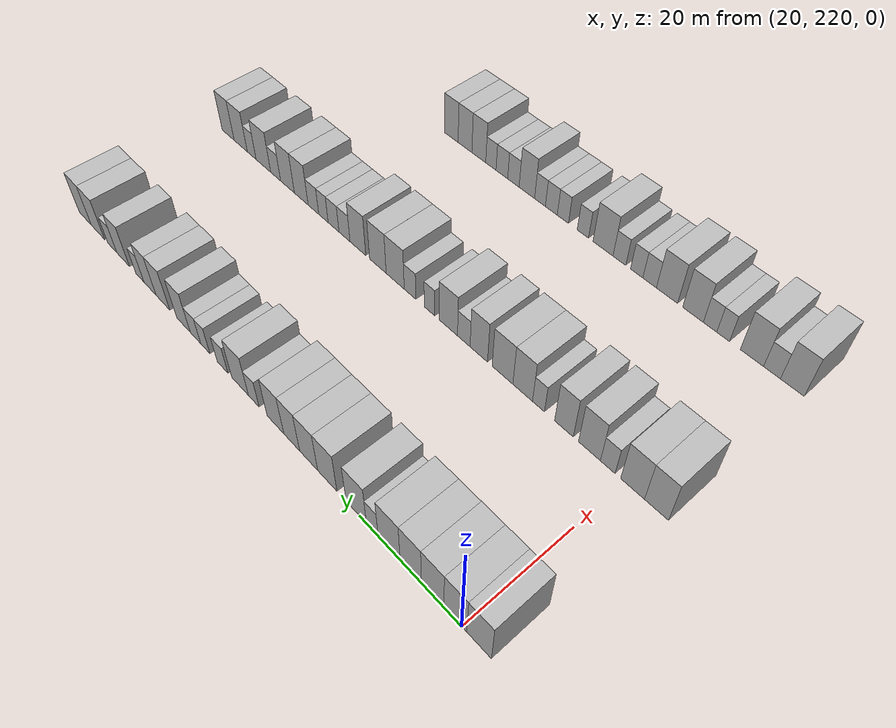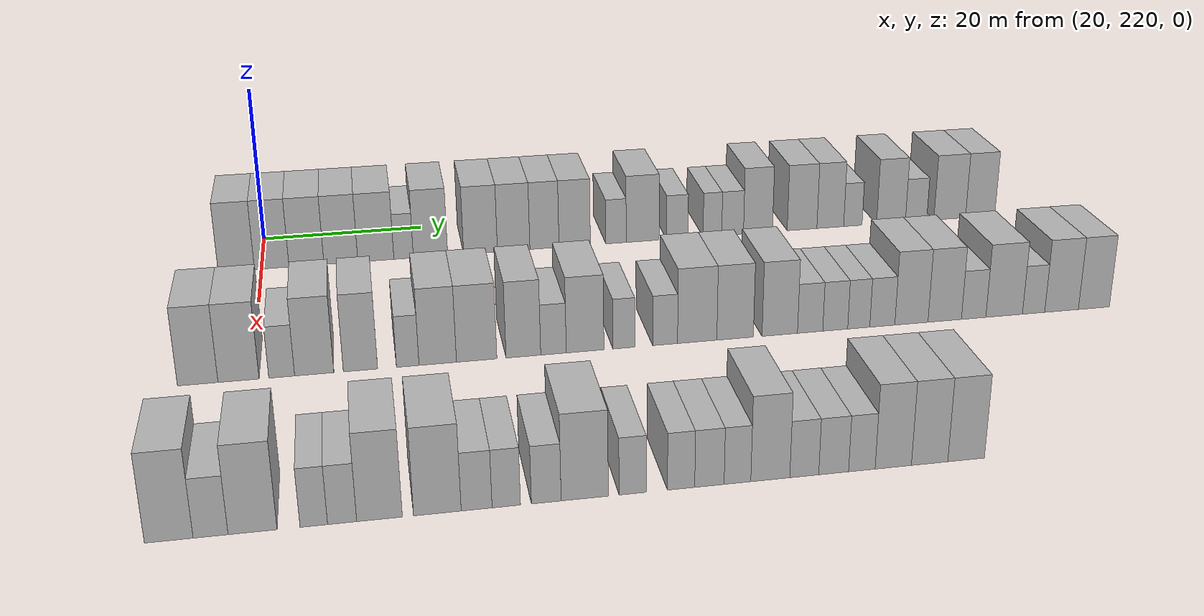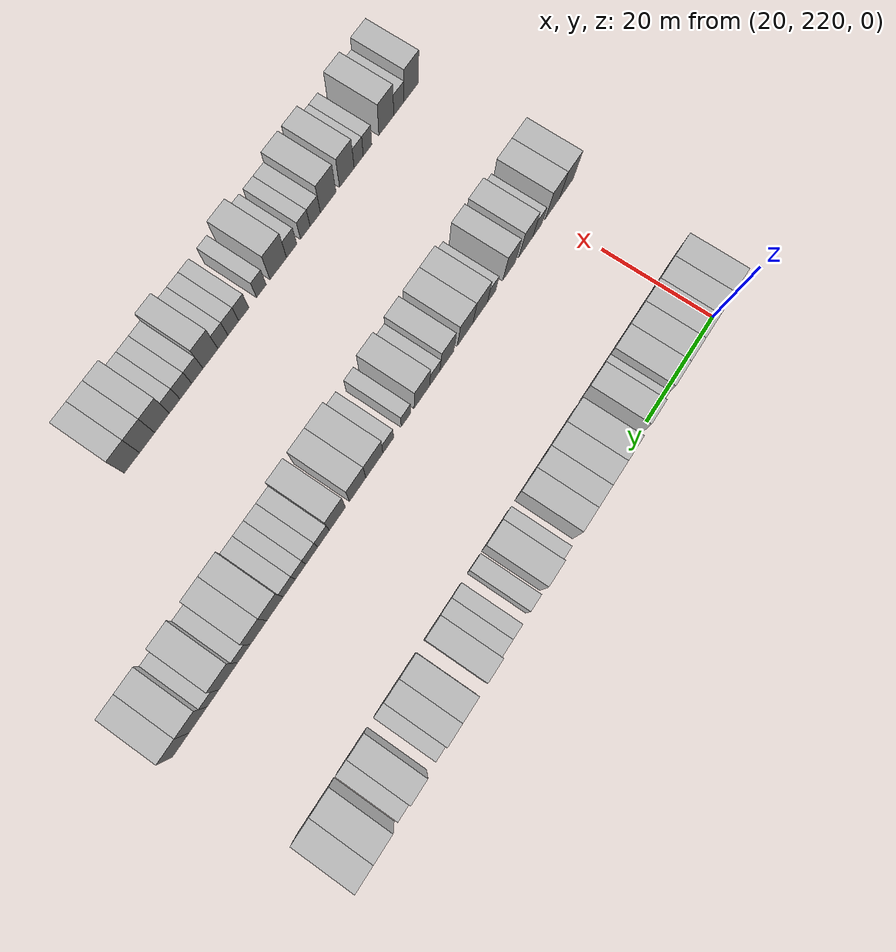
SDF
<sdf version="1.6">
 <world name="default">
  <model name="building_173">
   <static>1</static>
   <pose>25.0000 216.9651 0 0.000000 0.000000 0.000000</pose>
   <link name="link">
    <pose>0 0 4.50 0 0 0</pose>
    <collision name="collision"><geometry><box><size>10.0000 4.3359 9.0000</size></box></geometry></collision>
    <visual name="visual">
     <cast_shadows>0</cast_shadows>
     <geometry><box><size>10.0000 4.3359 9.0000</size></box></geometry>
     <material>
      <script>
       <uri>model://HANNAS_wall/materials/scripts</uri>
       <uri>model://HANNAS_wall/materials/textures</uri>
       <name>vrc/HANNAS_wall</name>
      </script>
     </material>
    </visual>
   </link>
  </model>
  <model name="building_174">
   <static>1</static>
   <pose>25.0000 221.2165 0 0.000000 0.000000 0.000000</pose>
   <link name="link">
    <pose>0 0 4.50 0 0 0</pose>
    <collision name="collision"><geometry><box><size>10.0000 4.1668 9.0000</size></box></geometry></collision>
    <visual name="visual">
     <cast_shadows>0</cast_shadows>
     <geometry><box><size>10.0000 4.1668 9.0000</size></box></geometry>
     <material>
      <script>
       <uri>model://HANNAS_wall/materials/scripts</uri>
       <uri>model://HANNAS_wall/materials/textures</uri>
       <name>vrc/HANNAS_wall</name>
      </script>
     </material>
    </visual>
   </link>
  </model>
  <model name="building_175">
   <static>1</static>
   <pose>25.0000 225.4187 0 0.000000 0.000000 0.000000</pose>
   <link name="link">
    <pose>0 0 4.50 0 0 0</pose>
    <collision name="collision"><geometry><box><size>10.0000 4.2378 9.0000</size></box></geometry></collision>
    <visual name="visual">
     <cast_shadows>0</cast_shadows>
     <geometry><box><size>10.0000 4.2378 9.0000</size></box></geometry>
     <material>
      <script>
       <uri>model://HANNAS_wall/materials/scripts</uri>
       <uri>model://HANNAS_wall/materials/textures</uri>
       <name>vrc/HANNAS_wall</name>
      </script>
     </material>
    </visual>
   </link>
  </model>
  <model name="building_176">
   <static>1</static>
   <pose>25.0000 229.6151 0 0.000000 0.000000 0.000000</pose>
   <link name="link">
    <pose>0 0 4.50 0 0 0</pose>
    <collision name="collision"><geometry><box><size>10.0000 4.1550 9.0000</size></box></geometry></collision>
    <visual name="visual">
     <cast_shadows>0</cast_shadows>
     <geometry><box><size>10.0000 4.1550 9.0000</size></box></geometry>
     <material>
      <script>
       <uri>model://HANNAS_wall/materials/scripts</uri>
       <uri>model://HANNAS_wall/materials/textures</uri>
       <name>vrc/HANNAS_wall</name>
      </script>
     </material>
    </visual>
   </link>
  </model>
  <model name="building_177">
   <static>1</static>
   <pose>25.0000 233.9117 0 0.000000 0.000000 0.000000</pose>
   <link name="link">
    <pose>0 0 4.50 0 0 0</pose>
    <collision name="collision"><geometry><box><size>10.0000 4.4381 9.0000</size></box></geometry></collision>
    <visual name="visual">
     <cast_shadows>0</cast_shadows>
     <geometry><box><size>10.0000 4.4381 9.0000</size></box></geometry>
     <material>
      <script>
       <uri>model://HANNAS_wall/materials/scripts</uri>
       <uri>model://HANNAS_wall/materials/textures</uri>
       <name>vrc/HANNAS_wall</name>
      </script>
     </material>
    </visual>
   </link>
  </model>
  <model name="building_178">
   <static>1</static>
   <pose>25.0000 237.3391 0 0.000000 0.000000 0.000000</pose>
   <link name="link">
    <pose>0 0 3.00 0 0 0</pose>
    <collision name="collision"><geometry><box><size>10.0000 2.4168 6.0000</size></box></geometry></collision>
    <visual name="visual">
     <cast_shadows>0</cast_shadows>
     <geometry><box><size>10.0000 2.4168 6.0000</size></box></geometry>
     <material>
      <script>
       <uri>model://HANNAS_wall/materials/scripts</uri>
       <uri>model://HANNAS_wall/materials/textures</uri>
       <name>vrc/HANNAS_wall</name>
      </script>
     </material>
    </visual>
   </link>
  </model>
  <model name="building_179">
   <static>1</static>
   <pose>25.0000 240.6886 0 0.000000 0.000000 0.000000</pose>
   <link name="link">
    <pose>0 0 4.50 0 0 0</pose>
    <collision name="collision"><geometry><box><size>10.0000 4.2821 9.0000</size></box></geometry></collision>
    <visual name="visual">
     <cast_shadows>0</cast_shadows>
     <geometry><box><size>10.0000 4.2821 9.0000</size></box></geometry>
     <material>
      <script>
       <uri>model://HANNAS_wall/materials/scripts</uri>
       <uri>model://HANNAS_wall/materials/textures</uri>
       <name>vrc/HANNAS_wall</name>
      </script>
     </material>
    </visual>
   </link>
  </model>
  <model name="building_180">
   <static>1</static>
   <pose>25.0000 246.9629 0 0.000000 0.000000 0.000000</pose>
   <link name="link">
    <pose>0 0 4.50 0 0 0</pose>
    <collision name="collision"><geometry><box><size>10.0000 4.2664 9.0000</size></box></geometry></collision>
    <visual name="visual">
     <cast_shadows>0</cast_shadows>
     <geometry><box><size>10.0000 4.2664 9.0000</size></box></geometry>
     <material>
      <script>
       <uri>model://HANNAS_wall/materials/scripts</uri>
       <uri>model://HANNAS_wall/materials/textures</uri>
       <name>vrc/HANNAS_wall</name>
      </script>
     </material>
    </visual>
   </link>
  </model>
  <model name="building_181">
   <static>1</static>
   <pose>25.0000 251.1588 0 0.000000 0.000000 0.000000</pose>
   <link name="link">
    <pose>0 0 4.50 0 0 0</pose>
    <collision name="collision"><geometry><box><size>10.0000 4.1256 9.0000</size></box></geometry></collision>
    <visual name="visual">
     <cast_shadows>0</cast_shadows>
     <geometry><box><size>10.0000 4.1256 9.0000</size></box></geometry>
     <material>
      <script>
       <uri>model://HANNAS_wall/materials/scripts</uri>
       <uri>model://HANNAS_wall/materials/textures</uri>
       <name>vrc/HANNAS_wall</name>
      </script>
     </material>
    </visual>
   </link>
  </model>
  <model name="building_182">
   <static>1</static>
   <pose>25.0000 255.0871 0 0.000000 0.000000 0.000000</pose>
   <link name="link">
    <pose>0 0 4.50 0 0 0</pose>
    <collision name="collision"><geometry><box><size>10.0000 3.7310 9.0000</size></box></geometry></collision>
    <visual name="visual">
     <cast_shadows>0</cast_shadows>
     <geometry><box><size>10.0000 3.7310 9.0000</size></box></geometry>
     <material>
      <script>
       <uri>model://HANNAS_wall/materials/scripts</uri>
       <uri>model://HANNAS_wall/materials/textures</uri>
       <name>vrc/HANNAS_wall</name>
      </script>
     </material>
    </visual>
   </link>
  </model>
  <model name="building_183">
   <static>1</static>
   <pose>25.0000 258.9717 0 0.000000 0.000000 0.000000</pose>
   <link name="link">
    <pose>0 0 4.50 0 0 0</pose>
    <collision name="collision"><geometry><box><size>10.0000 4.0381 9.0000</size></box></geometry></collision>
    <visual name="visual">
     <cast_shadows>0</cast_shadows>
     <geometry><box><size>10.0000 4.0381 9.0000</size></box></geometry>
     <material>
      <script>
       <uri>model://HANNAS_wall/materials/scripts</uri>
       <uri>model://HANNAS_wall/materials/textures</uri>
       <name>vrc/HANNAS_wall</name>
      </script>
     </material>
    </visual>
   </link>
  </model>
  <model name="building_184">
   <static>1</static>
   <pose>25.0000 264.3147 0 0.000000 0.000000 0.000000</pose>
   <link name="link">
    <pose>0 0 3.00 0 0 0</pose>
    <collision name="collision"><geometry><box><size>10.0000 2.6479 6.0000</size></box></geometry></collision>
    <visual name="visual">
     <cast_shadows>0</cast_shadows>
     <geometry><box><size>10.0000 2.6479 6.0000</size></box></geometry>
     <material>
      <script>
       <uri>model://HANNAS_wall/materials/scripts</uri>
       <uri>model://HANNAS_wall/materials/textures</uri>
       <name>vrc/HANNAS_wall</name>
      </script>
     </material>
    </visual>
   </link>
  </model>
  <model name="building_185">
   <static>1</static>
   <pose>25.0000 267.7854 0 0.000000 0.000000 0.000000</pose>
   <link name="link">
    <pose>0 0 4.50 0 0 0</pose>
    <collision name="collision"><geometry><box><size>10.0000 4.2936 9.0000</size></box></geometry></collision>
    <visual name="visual">
     <cast_shadows>0</cast_shadows>
     <geometry><box><size>10.0000 4.2936 9.0000</size></box></geometry>
     <material>
      <script>
       <uri>model://HANNAS_wall/materials/scripts</uri>
       <uri>model://HANNAS_wall/materials/textures</uri>
       <name>vrc/HANNAS_wall</name>
      </script>
     </material>
    </visual>
   </link>
  </model>
  <model name="building_186">
   <static>1</static>
   <pose>25.0000 272.3407 0 0.000000 0.000000 0.000000</pose>
   <link name="link">
    <pose>0 0 3.00 0 0 0</pose>
    <collision name="collision"><geometry><box><size>10.0000 2.8170 6.0000</size></box></geometry></collision>
    <visual name="visual">
     <cast_shadows>0</cast_shadows>
     <geometry><box><size>10.0000 2.8170 6.0000</size></box></geometry>
     <material>
      <script>
       <uri>model://HANNAS_wall/materials/scripts</uri>
       <uri>model://HANNAS_wall/materials/textures</uri>
       <name>vrc/HANNAS_wall</name>
      </script>
     </material>
    </visual>
   </link>
  </model>
  <model name="building_187">
   <static>1</static>
   <pose>25.0000 276.9847 0 0.000000 0.000000 0.000000</pose>
   <link name="link">
    <pose>0 0 3.00 0 0 0</pose>
    <collision name="collision"><geometry><box><size>10.0000 2.4710 6.0000</size></box></geometry></collision>
    <visual name="visual">
     <cast_shadows>0</cast_shadows>
     <geometry><box><size>10.0000 2.4710 6.0000</size></box></geometry>
     <material>
      <script>
       <uri>model://HANNAS_wall/materials/scripts</uri>
       <uri>model://HANNAS_wall/materials/textures</uri>
       <name>vrc/HANNAS_wall</name>
      </script>
     </material>
    </visual>
   </link>
  </model>
  <model name="building_188">
   <static>1</static>
   <pose>25.0000 279.6724 0 0.000000 0.000000 0.000000</pose>
   <link name="link">
    <pose>0 0 3.00 0 0 0</pose>
    <collision name="collision"><geometry><box><size>10.0000 2.9045 6.0000</size></box></geometry></collision>
    <visual name="visual">
     <cast_shadows>0</cast_shadows>
     <geometry><box><size>10.0000 2.9045 6.0000</size></box></geometry>
     <material>
      <script>
       <uri>model://HANNAS_wall/materials/scripts</uri>
       <uri>model://HANNAS_wall/materials/textures</uri>
       <name>vrc/HANNAS_wall</name>
      </script>
     </material>
    </visual>
   </link>
  </model>
  <model name="building_189">
   <static>1</static>
   <pose>25.0000 283.0646 0 0.000000 0.000000 0.000000</pose>
   <link name="link">
    <pose>0 0 4.50 0 0 0</pose>
    <collision name="collision"><geometry><box><size>10.0000 3.8799 9.0000</size></box></geometry></collision>
    <visual name="visual">
     <cast_shadows>0</cast_shadows>
     <geometry><box><size>10.0000 3.8799 9.0000</size></box></geometry>
     <material>
      <script>
       <uri>model://HANNAS_wall/materials/scripts</uri>
       <uri>model://HANNAS_wall/materials/textures</uri>
       <name>vrc/HANNAS_wall</name>
      </script>
     </material>
    </visual>
   </link>
  </model>
  <model name="building_190">
   <static>1</static>
   <pose>25.0000 289.0183 0 0.000000 0.000000 0.000000</pose>
   <link name="link">
    <pose>0 0 4.50 0 0 0</pose>
    <collision name="collision"><geometry><box><size>10.0000 4.0274 9.0000</size></box></geometry></collision>
    <visual name="visual">
     <cast_shadows>0</cast_shadows>
     <geometry><box><size>10.0000 4.0274 9.0000</size></box></geometry>
     <material>
      <script>
       <uri>model://HANNAS_wall/materials/scripts</uri>
       <uri>model://HANNAS_wall/materials/textures</uri>
       <name>vrc/HANNAS_wall</name>
      </script>
     </material>
    </visual>
   </link>
  </model>
  <model name="building_191">
   <static>1</static>
   <pose>25.0000 292.8583 0 0.000000 0.000000 0.000000</pose>
   <link name="link">
    <pose>0 0 4.50 0 0 0</pose>
    <collision name="collision"><geometry><box><size>10.0000 3.6526 9.0000</size></box></geometry></collision>
    <visual name="visual">
     <cast_shadows>0</cast_shadows>
     <geometry><box><size>10.0000 3.6526 9.0000</size></box></geometry>
     <material>
      <script>
       <uri>model://HANNAS_wall/materials/scripts</uri>
       <uri>model://HANNAS_wall/materials/textures</uri>
       <name>vrc/HANNAS_wall</name>
      </script>
     </material>
    </visual>
   </link>
  </model>
  <model name="building_192">
   <static>1</static>
   <pose>25.0000 295.9469 0 0.000000 0.000000 0.000000</pose>
   <link name="link">
    <pose>0 0 3.00 0 0 0</pose>
    <collision name="collision"><geometry><box><size>10.0000 2.5247 6.0000</size></box></geometry></collision>
    <visual name="visual">
     <cast_shadows>0</cast_shadows>
     <geometry><box><size>10.0000 2.5247 6.0000</size></box></geometry>
     <material>
      <script>
       <uri>model://HANNAS_wall/materials/scripts</uri>
       <uri>model://HANNAS_wall/materials/textures</uri>
       <name>vrc/HANNAS_wall</name>
      </script>
     </material>
    </visual>
   </link>
  </model>
  <model name="building_193">
   <static>1</static>
   <pose>25.0000 301.2041 0 0.000000 0.000000 0.000000</pose>
   <link name="link">
    <pose>0 0 4.50 0 0 0</pose>
    <collision name="collision"><geometry><box><size>10.0000 3.9897 9.0000</size></box></geometry></collision>
    <visual name="visual">
     <cast_shadows>0</cast_shadows>
     <geometry><box><size>10.0000 3.9897 9.0000</size></box></geometry>
     <material>
      <script>
       <uri>model://HANNAS_wall/materials/scripts</uri>
       <uri>model://HANNAS_wall/materials/textures</uri>
       <name>vrc/HANNAS_wall</name>
      </script>
     </material>
    </visual>
   </link>
  </model>
  <model name="building_194">
   <static>1</static>
   <pose>25.0000 304.6856 0 0.000000 0.000000 0.000000</pose>
   <link name="link">
    <pose>0 0 3.00 0 0 0</pose>
    <collision name="collision"><geometry><box><size>10.0000 2.9733 6.0000</size></box></geometry></collision>
    <visual name="visual">
     <cast_shadows>0</cast_shadows>
     <geometry><box><size>10.0000 2.9733 6.0000</size></box></geometry>
     <material>
      <script>
       <uri>model://HANNAS_wall/materials/scripts</uri>
       <uri>model://HANNAS_wall/materials/textures</uri>
       <name>vrc/HANNAS_wall</name>
      </script>
     </material>
    </visual>
   </link>
  </model>
  <model name="building_195">
   <static>1</static>
   <pose>25.0000 309.3934 0 0.000000 0.000000 0.000000</pose>
   <link name="link">
    <pose>0 0 4.50 0 0 0</pose>
    <collision name="collision"><geometry><box><size>10.0000 4.4424 9.0000</size></box></geometry></collision>
    <visual name="visual">
     <cast_shadows>0</cast_shadows>
     <geometry><box><size>10.0000 4.4424 9.0000</size></box></geometry>
     <material>
      <script>
       <uri>model://HANNAS_wall/materials/scripts</uri>
       <uri>model://HANNAS_wall/materials/textures</uri>
       <name>vrc/HANNAS_wall</name>
      </script>
     </material>
    </visual>
   </link>
  </model>
  <model name="building_196">
   <static>1</static>
   <pose>25.0000 313.6793 0 0.000000 0.000000 0.000000</pose>
   <link name="link">
    <pose>0 0 4.50 0 0 0</pose>
    <collision name="collision"><geometry><box><size>10.0000 4.1294 9.0000</size></box></geometry></collision>
    <visual name="visual">
     <cast_shadows>0</cast_shadows>
     <geometry><box><size>10.0000 4.1294 9.0000</size></box></geometry>
     <material>
      <script>
       <uri>model://HANNAS_wall/materials/scripts</uri>
       <uri>model://HANNAS_wall/materials/textures</uri>
       <name>vrc/HANNAS_wall</name>
      </script>
     </material>
    </visual>
   </link>
  </model>
  <model name="building_402">
   <static>1</static>
   <pose>55.0000 214.4181 0 0.000000 0.000000 0.000000</pose>
   <link name="link">
    <pose>0 0 4.50 0 0 0</pose>
    <collision name="collision"><geometry><box><size>10.0000 4.1393 9.0000</size></box></geometry></collision>
    <visual name="visual">
     <cast_shadows>0</cast_shadows>
     <geometry><box><size>10.0000 4.1393 9.0000</size></box></geometry>
     <material>
      <script>
       <uri>model://HANNAS_wall/materials/scripts</uri>
       <uri>model://HANNAS_wall/materials/textures</uri>
       <name>vrc/HANNAS_wall</name>
      </script>
     </material>
    </visual>
   </link>
  </model>
  <model name="building_403">
   <static>1</static>
   <pose>55.0000 218.6036 0 0.000000 0.000000 0.000000</pose>
   <link name="link">
    <pose>0 0 4.50 0 0 0</pose>
    <collision name="collision"><geometry><box><size>10.0000 4.2317 9.0000</size></box></geometry></collision>
    <visual name="visual">
     <cast_shadows>0</cast_shadows>
     <geometry><box><size>10.0000 4.2317 9.0000</size></box></geometry>
     <material>
      <script>
       <uri>model://HANNAS_wall/materials/scripts</uri>
       <uri>model://HANNAS_wall/materials/textures</uri>
       <name>vrc/HANNAS_wall</name>
      </script>
     </material>
    </visual>
   </link>
  </model>
  <model name="building_404">
   <static>1</static>
   <pose>55.0000 223.0631 0 0.000000 0.000000 0.000000</pose>
   <link name="link">
    <pose>0 0 3.00 0 0 0</pose>
    <collision name="collision"><geometry><box><size>10.0000 2.6873 6.0000</size></box></geometry></collision>
    <visual name="visual">
     <cast_shadows>0</cast_shadows>
     <geometry><box><size>10.0000 2.6873 6.0000</size></box></geometry>
     <material>
      <script>
       <uri>model://HANNAS_wall/materials/scripts</uri>
       <uri>model://HANNAS_wall/materials/textures</uri>
       <name>vrc/HANNAS_wall</name>
      </script>
     </material>
    </visual>
   </link>
  </model>
  <model name="building_405">
   <static>1</static>
   <pose>55.0000 226.4566 0 0.000000 0.000000 0.000000</pose>
   <link name="link">
    <pose>0 0 4.50 0 0 0</pose>
    <collision name="collision"><geometry><box><size>10.0000 4.0997 9.0000</size></box></geometry></collision>
    <visual name="visual">
     <cast_shadows>0</cast_shadows>
     <geometry><box><size>10.0000 4.0997 9.0000</size></box></geometry>
     <material>
      <script>
       <uri>model://HANNAS_wall/materials/scripts</uri>
       <uri>model://HANNAS_wall/materials/textures</uri>
       <name>vrc/HANNAS_wall</name>
      </script>
     </material>
    </visual>
   </link>
  </model>
  <model name="building_406">
   <static>1</static>
   <pose>55.0000 231.3196 0 0.000000 0.000000 0.000000</pose>
   <link name="link">
    <pose>0 0 4.50 0 0 0</pose>
    <collision name="collision"><geometry><box><size>10.0000 3.6262 9.0000</size></box></geometry></collision>
    <visual name="visual">
     <cast_shadows>0</cast_shadows>
     <geometry><box><size>10.0000 3.6262 9.0000</size></box></geometry>
     <material>
      <script>
       <uri>model://HANNAS_wall/materials/scripts</uri>
       <uri>model://HANNAS_wall/materials/textures</uri>
       <name>vrc/HANNAS_wall</name>
      </script>
     </material>
    </visual>
   </link>
  </model>
  <model name="building_407">
   <static>1</static>
   <pose>55.0000 236.3360 0 0.000000 0.000000 0.000000</pose>
   <link name="link">
    <pose>0 0 3.00 0 0 0</pose>
    <collision name="collision"><geometry><box><size>10.0000 2.4065 6.0000</size></box></geometry></collision>
    <visual name="visual">
     <cast_shadows>0</cast_shadows>
     <geometry><box><size>10.0000 2.4065 6.0000</size></box></geometry>
     <material>
      <script>
       <uri>model://HANNAS_wall/materials/scripts</uri>
       <uri>model://HANNAS_wall/materials/textures</uri>
       <name>vrc/HANNAS_wall</name>
      </script>
     </material>
    </visual>
   </link>
  </model>
  <model name="building_408">
   <static>1</static>
   <pose>55.0000 239.5535 0 0.000000 0.000000 0.000000</pose>
   <link name="link">
    <pose>0 0 4.50 0 0 0</pose>
    <collision name="collision"><geometry><box><size>10.0000 4.0287 9.0000</size></box></geometry></collision>
    <visual name="visual">
     <cast_shadows>0</cast_shadows>
     <geometry><box><size>10.0000 4.0287 9.0000</size></box></geometry>
     <material>
      <script>
       <uri>model://HANNAS_wall/materials/scripts</uri>
       <uri>model://HANNAS_wall/materials/textures</uri>
       <name>vrc/HANNAS_wall</name>
      </script>
     </material>
    </visual>
   </link>
  </model>
  <model name="building_409">
   <static>1</static>
   <pose>55.0000 243.7567 0 0.000000 0.000000 0.000000</pose>
   <link name="link">
    <pose>0 0 4.50 0 0 0</pose>
    <collision name="collision"><geometry><box><size>10.0000 4.3776 9.0000</size></box></geometry></collision>
    <visual name="visual">
     <cast_shadows>0</cast_shadows>
     <geometry><box><size>10.0000 4.3776 9.0000</size></box></geometry>
     <material>
      <script>
       <uri>model://HANNAS_wall/materials/scripts</uri>
       <uri>model://HANNAS_wall/materials/textures</uri>
       <name>vrc/HANNAS_wall</name>
      </script>
     </material>
    </visual>
   </link>
  </model>
  <model name="building_410">
   <static>1</static>
   <pose>55.0000 248.8457 0 0.000000 0.000000 0.000000</pose>
   <link name="link">
    <pose>0 0 4.50 0 0 0</pose>
    <collision name="collision"><geometry><box><size>10.0000 3.8006 9.0000</size></box></geometry></collision>
    <visual name="visual">
     <cast_shadows>0</cast_shadows>
     <geometry><box><size>10.0000 3.8006 9.0000</size></box></geometry>
     <material>
      <script>
       <uri>model://HANNAS_wall/materials/scripts</uri>
       <uri>model://HANNAS_wall/materials/textures</uri>
       <name>vrc/HANNAS_wall</name>
      </script>
     </material>
    </visual>
   </link>
  </model>
  <model name="building_411">
   <static>1</static>
   <pose>55.0000 252.1533 0 0.000000 0.000000 0.000000</pose>
   <link name="link">
    <pose>0 0 3.00 0 0 0</pose>
    <collision name="collision"><geometry><box><size>10.0000 2.8146 6.0000</size></box></geometry></collision>
    <visual name="visual">
     <cast_shadows>0</cast_shadows>
     <geometry><box><size>10.0000 2.8146 6.0000</size></box></geometry>
     <material>
      <script>
       <uri>model://HANNAS_wall/materials/scripts</uri>
       <uri>model://HANNAS_wall/materials/textures</uri>
       <name>vrc/HANNAS_wall</name>
      </script>
     </material>
    </visual>
   </link>
  </model>
  <model name="building_412">
   <static>1</static>
   <pose>55.0000 255.6524 0 0.000000 0.000000 0.000000</pose>
   <link name="link">
    <pose>0 0 4.50 0 0 0</pose>
    <collision name="collision"><geometry><box><size>10.0000 4.1836 9.0000</size></box></geometry></collision>
    <visual name="visual">
     <cast_shadows>0</cast_shadows>
     <geometry><box><size>10.0000 4.1836 9.0000</size></box></geometry>
     <material>
      <script>
       <uri>model://HANNAS_wall/materials/scripts</uri>
       <uri>model://HANNAS_wall/materials/textures</uri>
       <name>vrc/HANNAS_wall</name>
      </script>
     </material>
    </visual>
   </link>
  </model>
  <model name="building_413">
   <static>1</static>
   <pose>55.0000 259.9753 0 0.000000 0.000000 0.000000</pose>
   <link name="link">
    <pose>0 0 3.00 0 0 0</pose>
    <collision name="collision"><geometry><box><size>10.0000 2.4623 6.0000</size></box></geometry></collision>
    <visual name="visual">
     <cast_shadows>0</cast_shadows>
     <geometry><box><size>10.0000 2.4623 6.0000</size></box></geometry>
     <material>
      <script>
       <uri>model://HANNAS_wall/materials/scripts</uri>
       <uri>model://HANNAS_wall/materials/textures</uri>
       <name>vrc/HANNAS_wall</name>
      </script>
     </material>
    </visual>
   </link>
  </model>
  <model name="building_414">
   <static>1</static>
   <pose>55.0000 264.6136 0 0.000000 0.000000 0.000000</pose>
   <link name="link">
    <pose>0 0 3.00 0 0 0</pose>
    <collision name="collision"><geometry><box><size>10.0000 2.8142 6.0000</size></box></geometry></collision>
    <visual name="visual">
     <cast_shadows>0</cast_shadows>
     <geometry><box><size>10.0000 2.8142 6.0000</size></box></geometry>
     <material>
      <script>
       <uri>model://HANNAS_wall/materials/scripts</uri>
       <uri>model://HANNAS_wall/materials/textures</uri>
       <name>vrc/HANNAS_wall</name>
      </script>
     </material>
    </visual>
   </link>
  </model>
  <model name="building_415">
   <static>1</static>
   <pose>55.0000 268.2570 0 0.000000 0.000000 0.000000</pose>
   <link name="link">
    <pose>0 0 4.50 0 0 0</pose>
    <collision name="collision"><geometry><box><size>10.0000 4.4726 9.0000</size></box></geometry></collision>
    <visual name="visual">
     <cast_shadows>0</cast_shadows>
     <geometry><box><size>10.0000 4.4726 9.0000</size></box></geometry>
     <material>
      <script>
       <uri>model://HANNAS_wall/materials/scripts</uri>
       <uri>model://HANNAS_wall/materials/textures</uri>
       <name>vrc/HANNAS_wall</name>
      </script>
     </material>
    </visual>
   </link>
  </model>
  <model name="building_416">
   <static>1</static>
   <pose>55.0000 272.5903 0 0.000000 0.000000 0.000000</pose>
   <link name="link">
    <pose>0 0 4.50 0 0 0</pose>
    <collision name="collision"><geometry><box><size>10.0000 4.1939 9.0000</size></box></geometry></collision>
    <visual name="visual">
     <cast_shadows>0</cast_shadows>
     <geometry><box><size>10.0000 4.1939 9.0000</size></box></geometry>
     <material>
      <script>
       <uri>model://HANNAS_wall/materials/scripts</uri>
       <uri>model://HANNAS_wall/materials/textures</uri>
       <name>vrc/HANNAS_wall</name>
      </script>
     </material>
    </visual>
   </link>
  </model>
  <model name="building_417">
   <static>1</static>
   <pose>55.0000 277.7447 0 0.000000 0.000000 0.000000</pose>
   <link name="link">
    <pose>0 0 4.50 0 0 0</pose>
    <collision name="collision"><geometry><box><size>10.0000 4.1150 9.0000</size></box></geometry></collision>
    <visual name="visual">
     <cast_shadows>0</cast_shadows>
     <geometry><box><size>10.0000 4.1150 9.0000</size></box></geometry>
     <material>
      <script>
       <uri>model://HANNAS_wall/materials/scripts</uri>
       <uri>model://HANNAS_wall/materials/textures</uri>
       <name>vrc/HANNAS_wall</name>
      </script>
     </material>
    </visual>
   </link>
  </model>
  <model name="building_418">
   <static>1</static>
   <pose>55.0000 281.2809 0 0.000000 0.000000 0.000000</pose>
   <link name="link">
    <pose>0 0 3.00 0 0 0</pose>
    <collision name="collision"><geometry><box><size>10.0000 2.9574 6.0000</size></box></geometry></collision>
    <visual name="visual">
     <cast_shadows>0</cast_shadows>
     <geometry><box><size>10.0000 2.9574 6.0000</size></box></geometry>
     <material>
      <script>
       <uri>model://HANNAS_wall/materials/scripts</uri>
       <uri>model://HANNAS_wall/materials/textures</uri>
       <name>vrc/HANNAS_wall</name>
      </script>
     </material>
    </visual>
   </link>
  </model>
  <model name="building_419">
   <static>1</static>
   <pose>55.0000 284.2248 0 0.000000 0.000000 0.000000</pose>
   <link name="link">
    <pose>0 0 3.00 0 0 0</pose>
    <collision name="collision"><geometry><box><size>10.0000 2.9305 6.0000</size></box></geometry></collision>
    <visual name="visual">
     <cast_shadows>0</cast_shadows>
     <geometry><box><size>10.0000 2.9305 6.0000</size></box></geometry>
     <material>
      <script>
       <uri>model://HANNAS_wall/materials/scripts</uri>
       <uri>model://HANNAS_wall/materials/textures</uri>
       <name>vrc/HANNAS_wall</name>
      </script>
     </material>
    </visual>
   </link>
  </model>
  <model name="building_420">
   <static>1</static>
   <pose>55.0000 286.9927 0 0.000000 0.000000 0.000000</pose>
   <link name="link">
    <pose>0 0 3.00 0 0 0</pose>
    <collision name="collision"><geometry><box><size>10.0000 2.6052 6.0000</size></box></geometry></collision>
    <visual name="visual">
     <cast_shadows>0</cast_shadows>
     <geometry><box><size>10.0000 2.6052 6.0000</size></box></geometry>
     <material>
      <script>
       <uri>model://HANNAS_wall/materials/scripts</uri>
       <uri>model://HANNAS_wall/materials/textures</uri>
       <name>vrc/HANNAS_wall</name>
      </script>
     </material>
    </visual>
   </link>
  </model>
  <model name="building_421">
   <static>1</static>
   <pose>55.0000 289.7856 0 0.000000 0.000000 0.000000</pose>
   <link name="link">
    <pose>0 0 3.00 0 0 0</pose>
    <collision name="collision"><geometry><box><size>10.0000 2.9808 6.0000</size></box></geometry></collision>
    <visual name="visual">
     <cast_shadows>0</cast_shadows>
     <geometry><box><size>10.0000 2.9808 6.0000</size></box></geometry>
     <material>
      <script>
       <uri>model://HANNAS_wall/materials/scripts</uri>
       <uri>model://HANNAS_wall/materials/textures</uri>
       <name>vrc/HANNAS_wall</name>
      </script>
     </material>
    </visual>
   </link>
  </model>
  <model name="building_422">
   <static>1</static>
   <pose>55.0000 293.2589 0 0.000000 0.000000 0.000000</pose>
   <link name="link">
    <pose>0 0 4.50 0 0 0</pose>
    <collision name="collision"><geometry><box><size>10.0000 3.9658 9.0000</size></box></geometry></collision>
    <visual name="visual">
     <cast_shadows>0</cast_shadows>
     <geometry><box><size>10.0000 3.9658 9.0000</size></box></geometry>
     <material>
      <script>
       <uri>model://HANNAS_wall/materials/scripts</uri>
       <uri>model://HANNAS_wall/materials/textures</uri>
       <name>vrc/HANNAS_wall</name>
      </script>
     </material>
    </visual>
   </link>
  </model>
  <model name="building_423">
   <static>1</static>
   <pose>55.0000 297.2574 0 0.000000 0.000000 0.000000</pose>
   <link name="link">
    <pose>0 0 4.50 0 0 0</pose>
    <collision name="collision"><geometry><box><size>10.0000 4.0312 9.0000</size></box></geometry></collision>
    <visual name="visual">
     <cast_shadows>0</cast_shadows>
     <geometry><box><size>10.0000 4.0312 9.0000</size></box></geometry>
     <material>
      <script>
       <uri>model://HANNAS_wall/materials/scripts</uri>
       <uri>model://HANNAS_wall/materials/textures</uri>
       <name>vrc/HANNAS_wall</name>
      </script>
     </material>
    </visual>
   </link>
  </model>
  <model name="building_424">
   <static>1</static>
   <pose>55.0000 300.7564 0 0.000000 0.000000 0.000000</pose>
   <link name="link">
    <pose>0 0 3.00 0 0 0</pose>
    <collision name="collision"><geometry><box><size>10.0000 2.9669 6.0000</size></box></geometry></collision>
    <visual name="visual">
     <cast_shadows>0</cast_shadows>
     <geometry><box><size>10.0000 2.9669 6.0000</size></box></geometry>
     <material>
      <script>
       <uri>model://HANNAS_wall/materials/scripts</uri>
       <uri>model://HANNAS_wall/materials/textures</uri>
       <name>vrc/HANNAS_wall</name>
      </script>
     </material>
    </visual>
   </link>
  </model>
  <model name="building_425">
   <static>1</static>
   <pose>55.0000 304.4781 0 0.000000 0.000000 0.000000</pose>
   <link name="link">
    <pose>0 0 4.50 0 0 0</pose>
    <collision name="collision"><geometry><box><size>10.0000 4.4765 9.0000</size></box></geometry></collision>
    <visual name="visual">
     <cast_shadows>0</cast_shadows>
     <geometry><box><size>10.0000 4.4765 9.0000</size></box></geometry>
     <material>
      <script>
       <uri>model://HANNAS_wall/materials/scripts</uri>
       <uri>model://HANNAS_wall/materials/textures</uri>
       <name>vrc/HANNAS_wall</name>
      </script>
     </material>
    </visual>
   </link>
  </model>
  <model name="building_426">
   <static>1</static>
   <pose>55.0000 308.0837 0 0.000000 0.000000 0.000000</pose>
   <link name="link">
    <pose>0 0 3.00 0 0 0</pose>
    <collision name="collision"><geometry><box><size>10.0000 2.7348 6.0000</size></box></geometry></collision>
    <visual name="visual">
     <cast_shadows>0</cast_shadows>
     <geometry><box><size>10.0000 2.7348 6.0000</size></box></geometry>
     <material>
      <script>
       <uri>model://HANNAS_wall/materials/scripts</uri>
       <uri>model://HANNAS_wall/materials/textures</uri>
       <name>vrc/HANNAS_wall</name>
      </script>
     </material>
    </visual>
   </link>
  </model>
  <model name="building_427">
   <static>1</static>
   <pose>55.0000 311.5398 0 0.000000 0.000000 0.000000</pose>
   <link name="link">
    <pose>0 0 4.50 0 0 0</pose>
    <collision name="collision"><geometry><box><size>10.0000 4.1774 9.0000</size></box></geometry></collision>
    <visual name="visual">
     <cast_shadows>0</cast_shadows>
     <geometry><box><size>10.0000 4.1774 9.0000</size></box></geometry>
     <material>
      <script>
       <uri>model://HANNAS_wall/materials/scripts</uri>
       <uri>model://HANNAS_wall/materials/textures</uri>
       <name>vrc/HANNAS_wall</name>
      </script>
     </material>
    </visual>
   </link>
  </model>
  <model name="building_428">
   <static>1</static>
   <pose>55.0000 315.5614 0 0.000000 0.000000 0.000000</pose>
   <link name="link">
    <pose>0 0 4.50 0 0 0</pose>
    <collision name="collision"><geometry><box><size>10.0000 3.8659 9.0000</size></box></geometry></collision>
    <visual name="visual">
     <cast_shadows>0</cast_shadows>
     <geometry><box><size>10.0000 3.8659 9.0000</size></box></geometry>
     <material>
      <script>
       <uri>model://HANNAS_wall/materials/scripts</uri>
       <uri>model://HANNAS_wall/materials/textures</uri>
       <name>vrc/HANNAS_wall</name>
      </script>
     </material>
    </visual>
   </link>
  </model>
  <model name="building_636">
   <static>1</static>
   <pose>85.0000 214.0066 0 0.000000 0.000000 0.000000</pose>
   <link name="link">
    <pose>0 0 4.50 0 0 0</pose>
    <collision name="collision"><geometry><box><size>10.0000 4.1350 9.0000</size></box></geometry></collision>
    <visual name="visual">
     <cast_shadows>0</cast_shadows>
     <geometry><box><size>10.0000 4.1350 9.0000</size></box></geometry>
     <material>
      <script>
       <uri>model://HANNAS_wall/materials/scripts</uri>
       <uri>model://HANNAS_wall/materials/textures</uri>
       <name>vrc/HANNAS_wall</name>
      </script>
     </material>
    </visual>
   </link>
  </model>
  <model name="building_637">
   <static>1</static>
   <pose>85.0000 217.5733 0 0.000000 0.000000 0.000000</pose>
   <link name="link">
    <pose>0 0 3.00 0 0 0</pose>
    <collision name="collision"><geometry><box><size>10.0000 2.9984 6.0000</size></box></geometry></collision>
    <visual name="visual">
     <cast_shadows>0</cast_shadows>
     <geometry><box><size>10.0000 2.9984 6.0000</size></box></geometry>
     <material>
      <script>
       <uri>model://HANNAS_wall/materials/scripts</uri>
       <uri>model://HANNAS_wall/materials/textures</uri>
       <name>vrc/HANNAS_wall</name>
      </script>
     </material>
    </visual>
   </link>
  </model>
  <model name="building_638">
   <static>1</static>
   <pose>85.0000 221.1897 0 0.000000 0.000000 0.000000</pose>
   <link name="link">
    <pose>0 0 4.50 0 0 0</pose>
    <collision name="collision"><geometry><box><size>10.0000 4.2343 9.0000</size></box></geometry></collision>
    <visual name="visual">
     <cast_shadows>0</cast_shadows>
     <geometry><box><size>10.0000 4.2343 9.0000</size></box></geometry>
     <material>
      <script>
       <uri>model://HANNAS_wall/materials/scripts</uri>
       <uri>model://HANNAS_wall/materials/textures</uri>
       <name>vrc/HANNAS_wall</name>
      </script>
     </material>
    </visual>
   </link>
  </model>
  <model name="building_639">
   <static>1</static>
   <pose>85.0000 226.5122 0 0.000000 0.000000 0.000000</pose>
   <link name="link">
    <pose>0 0 3.00 0 0 0</pose>
    <collision name="collision"><geometry><box><size>10.0000 2.4107 6.0000</size></box></geometry></collision>
    <visual name="visual">
     <cast_shadows>0</cast_shadows>
     <geometry><box><size>10.0000 2.4107 6.0000</size></box></geometry>
     <material>
      <script>
       <uri>model://HANNAS_wall/materials/scripts</uri>
       <uri>model://HANNAS_wall/materials/textures</uri>
       <name>vrc/HANNAS_wall</name>
      </script>
     </material>
    </visual>
   </link>
  </model>
  <model name="building_640">
   <static>1</static>
   <pose>85.0000 229.0014 0 0.000000 0.000000 0.000000</pose>
   <link name="link">
    <pose>0 0 3.00 0 0 0</pose>
    <collision name="collision"><geometry><box><size>10.0000 2.5677 6.0000</size></box></geometry></collision>
    <visual name="visual">
     <cast_shadows>0</cast_shadows>
     <geometry><box><size>10.0000 2.5677 6.0000</size></box></geometry>
     <material>
      <script>
       <uri>model://HANNAS_wall/materials/scripts</uri>
       <uri>model://HANNAS_wall/materials/textures</uri>
       <name>vrc/HANNAS_wall</name>
      </script>
     </material>
    </visual>
   </link>
  </model>
  <model name="building_641">
   <static>1</static>
   <pose>85.0000 232.3115 0 0.000000 0.000000 0.000000</pose>
   <link name="link">
    <pose>0 0 4.50 0 0 0</pose>
    <collision name="collision"><geometry><box><size>10.0000 4.0526 9.0000</size></box></geometry></collision>
    <visual name="visual">
     <cast_shadows>0</cast_shadows>
     <geometry><box><size>10.0000 4.0526 9.0000</size></box></geometry>
     <material>
      <script>
       <uri>model://HANNAS_wall/materials/scripts</uri>
       <uri>model://HANNAS_wall/materials/textures</uri>
       <name>vrc/HANNAS_wall</name>
      </script>
     </material>
    </visual>
   </link>
  </model>
  <model name="building_642">
   <static>1</static>
   <pose>85.0000 237.4822 0 0.000000 0.000000 0.000000</pose>
   <link name="link">
    <pose>0 0 4.50 0 0 0</pose>
    <collision name="collision"><geometry><box><size>10.0000 4.2887 9.0000</size></box></geometry></collision>
    <visual name="visual">
     <cast_shadows>0</cast_shadows>
     <geometry><box><size>10.0000 4.2887 9.0000</size></box></geometry>
     <material>
      <script>
       <uri>model://HANNAS_wall/materials/scripts</uri>
       <uri>model://HANNAS_wall/materials/textures</uri>
       <name>vrc/HANNAS_wall</name>
      </script>
     </material>
    </visual>
   </link>
  </model>
  <model name="building_643">
   <static>1</static>
   <pose>85.0000 241.0275 0 0.000000 0.000000 0.000000</pose>
   <link name="link">
    <pose>0 0 3.00 0 0 0</pose>
    <collision name="collision"><geometry><box><size>10.0000 2.8020 6.0000</size></box></geometry></collision>
    <visual name="visual">
     <cast_shadows>0</cast_shadows>
     <geometry><box><size>10.0000 2.8020 6.0000</size></box></geometry>
     <material>
      <script>
       <uri>model://HANNAS_wall/materials/scripts</uri>
       <uri>model://HANNAS_wall/materials/textures</uri>
       <name>vrc/HANNAS_wall</name>
      </script>
     </material>
    </visual>
   </link>
  </model>
  <model name="building_644">
   <static>1</static>
   <pose>85.0000 243.7264 0 0.000000 0.000000 0.000000</pose>
   <link name="link">
    <pose>0 0 3.00 0 0 0</pose>
    <collision name="collision"><geometry><box><size>10.0000 2.5959 6.0000</size></box></geometry></collision>
    <visual name="visual">
     <cast_shadows>0</cast_shadows>
     <geometry><box><size>10.0000 2.5959 6.0000</size></box></geometry>
     <material>
      <script>
       <uri>model://HANNAS_wall/materials/scripts</uri>
       <uri>model://HANNAS_wall/materials/textures</uri>
       <name>vrc/HANNAS_wall</name>
      </script>
     </material>
    </visual>
   </link>
  </model>
  <model name="building_645">
   <static>1</static>
   <pose>85.0000 247.3971 0 0.000000 0.000000 0.000000</pose>
   <link name="link">
    <pose>0 0 3.00 0 0 0</pose>
    <collision name="collision"><geometry><box><size>10.0000 2.7455 6.0000</size></box></geometry></collision>
    <visual name="visual">
     <cast_shadows>0</cast_shadows>
     <geometry><box><size>10.0000 2.7455 6.0000</size></box></geometry>
     <material>
      <script>
       <uri>model://HANNAS_wall/materials/scripts</uri>
       <uri>model://HANNAS_wall/materials/textures</uri>
       <name>vrc/HANNAS_wall</name>
      </script>
     </material>
    </visual>
   </link>
  </model>
  <model name="building_646">
   <static>1</static>
   <pose>85.0000 250.9653 0 0.000000 0.000000 0.000000</pose>
   <link name="link">
    <pose>0 0 4.50 0 0 0</pose>
    <collision name="collision"><geometry><box><size>10.0000 4.3907 9.0000</size></box></geometry></collision>
    <visual name="visual">
     <cast_shadows>0</cast_shadows>
     <geometry><box><size>10.0000 4.3907 9.0000</size></box></geometry>
     <material>
      <script>
       <uri>model://HANNAS_wall/materials/scripts</uri>
       <uri>model://HANNAS_wall/materials/textures</uri>
       <name>vrc/HANNAS_wall</name>
      </script>
     </material>
    </visual>
   </link>
  </model>
  <model name="building_647">
   <static>1</static>
   <pose>85.0000 255.4367 0 0.000000 0.000000 0.000000</pose>
   <link name="link">
    <pose>0 0 3.00 0 0 0</pose>
    <collision name="collision"><geometry><box><size>10.0000 2.5522 6.0000</size></box></geometry></collision>
    <visual name="visual">
     <cast_shadows>0</cast_shadows>
     <geometry><box><size>10.0000 2.5522 6.0000</size></box></geometry>
     <material>
      <script>
       <uri>model://HANNAS_wall/materials/scripts</uri>
       <uri>model://HANNAS_wall/materials/textures</uri>
       <name>vrc/HANNAS_wall</name>
      </script>
     </material>
    </visual>
   </link>
  </model>
  <model name="building_648">
   <static>1</static>
   <pose>85.0000 260.0083 0 0.000000 0.000000 0.000000</pose>
   <link name="link">
    <pose>0 0 3.00 0 0 0</pose>
    <collision name="collision"><geometry><box><size>10.0000 2.5911 6.0000</size></box></geometry></collision>
    <visual name="visual">
     <cast_shadows>0</cast_shadows>
     <geometry><box><size>10.0000 2.5911 6.0000</size></box></geometry>
     <material>
      <script>
       <uri>model://HANNAS_wall/materials/scripts</uri>
       <uri>model://HANNAS_wall/materials/textures</uri>
       <name>vrc/HANNAS_wall</name>
      </script>
     </material>
    </visual>
   </link>
  </model>
  <model name="building_649">
   <static>1</static>
   <pose>85.0000 262.7087 0 0.000000 0.000000 0.000000</pose>
   <link name="link">
    <pose>0 0 3.00 0 0 0</pose>
    <collision name="collision"><geometry><box><size>10.0000 2.8096 6.0000</size></box></geometry></collision>
    <visual name="visual">
     <cast_shadows>0</cast_shadows>
     <geometry><box><size>10.0000 2.8096 6.0000</size></box></geometry>
     <material>
      <script>
       <uri>model://HANNAS_wall/materials/scripts</uri>
       <uri>model://HANNAS_wall/materials/textures</uri>
       <name>vrc/HANNAS_wall</name>
      </script>
     </material>
    </visual>
   </link>
  </model>
  <model name="building_650">
   <static>1</static>
   <pose>85.0000 265.3962 0 0.000000 0.000000 0.000000</pose>
   <link name="link">
    <pose>0 0 3.00 0 0 0</pose>
    <collision name="collision"><geometry><box><size>10.0000 2.5655 6.0000</size></box></geometry></collision>
    <visual name="visual">
     <cast_shadows>0</cast_shadows>
     <geometry><box><size>10.0000 2.5655 6.0000</size></box></geometry>
     <material>
      <script>
       <uri>model://HANNAS_wall/materials/scripts</uri>
       <uri>model://HANNAS_wall/materials/textures</uri>
       <name>vrc/HANNAS_wall</name>
      </script>
     </material>
    </visual>
   </link>
  </model>
  <model name="building_651">
   <static>1</static>
   <pose>85.0000 268.5693 0 0.000000 0.000000 0.000000</pose>
   <link name="link">
    <pose>0 0 4.50 0 0 0</pose>
    <collision name="collision"><geometry><box><size>10.0000 3.7807 9.0000</size></box></geometry></collision>
    <visual name="visual">
     <cast_shadows>0</cast_shadows>
     <geometry><box><size>10.0000 3.7807 9.0000</size></box></geometry>
     <material>
      <script>
       <uri>model://HANNAS_wall/materials/scripts</uri>
       <uri>model://HANNAS_wall/materials/textures</uri>
       <name>vrc/HANNAS_wall</name>
      </script>
     </material>
    </visual>
   </link>
  </model>
  <model name="building_652">
   <static>1</static>
   <pose>85.0000 271.8732 0 0.000000 0.000000 0.000000</pose>
   <link name="link">
    <pose>0 0 3.00 0 0 0</pose>
    <collision name="collision"><geometry><box><size>10.0000 2.8271 6.0000</size></box></geometry></collision>
    <visual name="visual">
     <cast_shadows>0</cast_shadows>
     <geometry><box><size>10.0000 2.8271 6.0000</size></box></geometry>
     <material>
      <script>
       <uri>model://HANNAS_wall/materials/scripts</uri>
       <uri>model://HANNAS_wall/materials/textures</uri>
       <name>vrc/HANNAS_wall</name>
      </script>
     </material>
    </visual>
   </link>
  </model>
  <model name="building_653">
   <static>1</static>
   <pose>85.0000 274.7555 0 0.000000 0.000000 0.000000</pose>
   <link name="link">
    <pose>0 0 3.00 0 0 0</pose>
    <collision name="collision"><geometry><box><size>10.0000 2.9375 6.0000</size></box></geometry></collision>
    <visual name="visual">
     <cast_shadows>0</cast_shadows>
     <geometry><box><size>10.0000 2.9375 6.0000</size></box></geometry>
     <material>
      <script>
       <uri>model://HANNAS_wall/materials/scripts</uri>
       <uri>model://HANNAS_wall/materials/textures</uri>
       <name>vrc/HANNAS_wall</name>
      </script>
     </material>
    </visual>
   </link>
  </model>
  <model name="building_654">
   <static>1</static>
   <pose>85.0000 277.5380 0 0.000000 0.000000 0.000000</pose>
   <link name="link">
    <pose>0 0 3.00 0 0 0</pose>
    <collision name="collision"><geometry><box><size>10.0000 2.6276 6.0000</size></box></geometry></collision>
    <visual name="visual">
     <cast_shadows>0</cast_shadows>
     <geometry><box><size>10.0000 2.6276 6.0000</size></box></geometry>
     <material>
      <script>
       <uri>model://HANNAS_wall/materials/scripts</uri>
       <uri>model://HANNAS_wall/materials/textures</uri>
       <name>vrc/HANNAS_wall</name>
      </script>
     </material>
    </visual>
   </link>
  </model>
  <model name="building_655">
   <static>1</static>
   <pose>85.0000 280.6604 0 0.000000 0.000000 0.000000</pose>
   <link name="link">
    <pose>0 0 4.50 0 0 0</pose>
    <collision name="collision"><geometry><box><size>10.0000 3.6171 9.0000</size></box></geometry></collision>
    <visual name="visual">
     <cast_shadows>0</cast_shadows>
     <geometry><box><size>10.0000 3.6171 9.0000</size></box></geometry>
     <material>
      <script>
       <uri>model://HANNAS_wall/materials/scripts</uri>
       <uri>model://HANNAS_wall/materials/textures</uri>
       <name>vrc/HANNAS_wall</name>
      </script>
     </material>
    </visual>
   </link>
  </model>
  <model name="building_656">
   <static>1</static>
   <pose>85.0000 284.3005 0 0.000000 0.000000 0.000000</pose>
   <link name="link">
    <pose>0 0 4.50 0 0 0</pose>
    <collision name="collision"><geometry><box><size>10.0000 3.6631 9.0000</size></box></geometry></collision>
    <visual name="visual">
     <cast_shadows>0</cast_shadows>
     <geometry><box><size>10.0000 3.6631 9.0000</size></box></geometry>
     <material>
      <script>
       <uri>model://HANNAS_wall/materials/scripts</uri>
       <uri>model://HANNAS_wall/materials/textures</uri>
       <name>vrc/HANNAS_wall</name>
      </script>
     </material>
    </visual>
   </link>
  </model>
  <model name="building_657">
   <static>1</static>
   <pose>85.0000 287.9891 0 0.000000 0.000000 0.000000</pose>
   <link name="link">
    <pose>0 0 4.50 0 0 0</pose>
    <collision name="collision"><geometry><box><size>10.0000 3.7142 9.0000</size></box></geometry></collision>
    <visual name="visual">
     <cast_shadows>0</cast_shadows>
     <geometry><box><size>10.0000 3.7142 9.0000</size></box></geometry>
     <material>
      <script>
       <uri>model://HANNAS_wall/materials/scripts</uri>
       <uri>model://HANNAS_wall/materials/textures</uri>
       <name>vrc/HANNAS_wall</name>
      </script>
     </material>
    </visual>
   </link>
  </model>
 </world>
</sdf>
